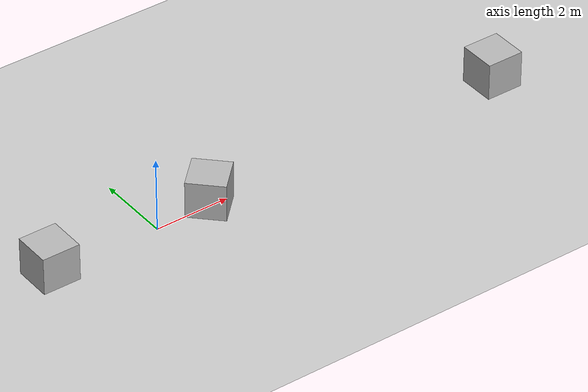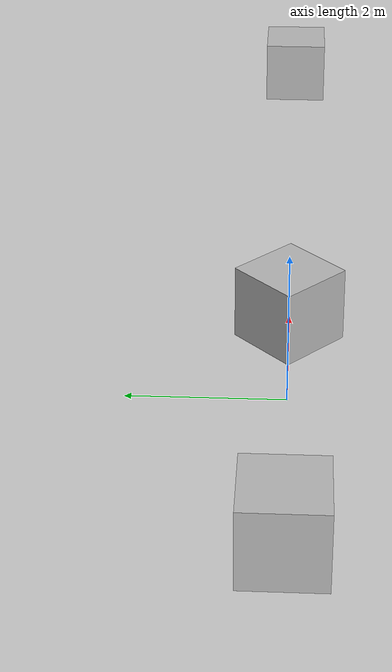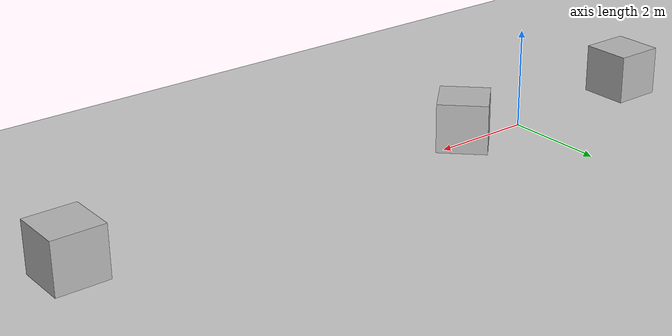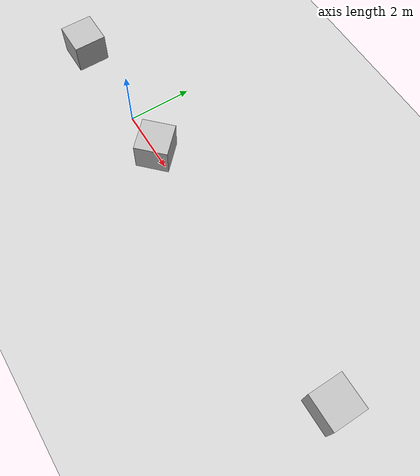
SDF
<?xml version="1.0" ?>
<sdf version="1.7">
    <world name="gazebo_ros_vision_test">
        <include>
            <!-- plane should be ignored by the detector plugins -->
            <uri>https://fuel.ignitionrobotics.org/1.0/OpenRobotics/models/Ground Plane</uri>
        </include>
        <include>
            <uri>model://sun</uri>
        </include>
        <model name="whitelisted_model">
            <pose>1.5 0 0.5 0 0 0.78525</pose>
            <static>true</static>
            <link name="link">
                <visual name="visual">
                    <geometry>
                        <box>
                            <size>1 1 1</size>
                        </box>
                    </geometry>
                </visual>
                <collision name="collision">
                    <geometry>
                        <box>
                            <size>1 1 1</size>
                        </box>
                    </geometry>
                </collision>
            </link>
        </model>
        <!-- model behind the camera, should be seen by detections, but not by logical camera-->
        <model name="whitelisted_behind">
            <pose>-3.0 0 0.5 0 0 0</pose>
            <static>true</static>
            <link name="link">
                <visual name="visual">
                    <geometry>
                        <box>
                            <size>1 1 1</size>
                        </box>
                    </geometry>
                </visual>
                <collision name="collision">
                    <geometry>
                        <box>
                            <size>1 1 1</size>
                        </box>
                    </geometry>
                </collision>
            </link>
        </model>
        <!-- model far from the camera, should not by seen by detections or camera -->
        <model name="whitelisted_far">
            <pose>10 0 0.5 0 0 0</pose>
            <static>true</static>
            <link name="link">
                <visual name="visual">
                    <geometry>
                        <box>
                            <size>1 1 1</size>
                        </box>
                    </geometry>
                </visual>
                <collision name="collision">
                    <geometry>
                        <box>
                            <size>1 1 1</size>
                        </box>
                    </geometry>
                </collision>
            </link>
        </model>
        <model name="detector">
            <pose>-2 0 1 0 0 0</pose>
            <static>true</static>
            <link name="detector">
                <sensor type="logical_camera" name="detector_camera">
                    <always_on>1</always_on>
                    <update_rate>1</update_rate>
                    <logical_camera>
                        <near>1.0</near>
                        <far>8.0</far>
                        <aspect_ratio>1.33333</aspect_ratio>
                        <horizontal_fov>0.52</horizontal_fov>
                    </logical_camera>
                    <visualize>true</visualize>
                    <plugin name="camera_detections" filename="libgazebo_ros_logical_camera.so">
                        <ros>
                            <namespace>gazebo_ros_vision</namespace>
                            <remapping>~/detections:=logical_camera/detections</remapping>
                        </ros>
                        <model_whitelist>
                            <prefix>whitelisted</prefix>
                        </model_whitelist>
                        <pose_noise>
                            <position>
                                <x>
                                    <noise type="gaussian_quantized">
                                        <stddev>0.1</stddev>
                                        <precision>0.01</precision>
                                    </noise>
                                </x>
                                <y>
                                    <noise type="gaussian_quantized">
                                        <stddev>0.1</stddev>
                                        <precision>0.01</precision>
                                    </noise>
                                </y>
                                <z>
                                    <noise type="gaussian_quantized">
                                        <stddev>0.1</stddev>
                                        <precision>0.01</precision>
                                    </noise>
                                </z>
                            </position>
                        </pose_noise>
                        <false_positive_p>0.01</false_positive_p>
                        <pose_noise_published_scale>2.0</pose_noise_published_scale>
                    </plugin>
                </sensor>
            </link>
            <!-- model plugin publishes object list relative to model -->
            <plugin name="detector_detections" filename="libgazebo_ros_detections.so">
                <ros>
                    <remapping>~/detections:=detector/detections</remapping>
                </ros>
                <!-- message header frame name should be 'detector' (same as model) -->
                <update_rate>1.0</update_rate>
                <max_distance>5.0</max_distance>
                <model_whitelist>
                    <prefix>whitelisted</prefix>
                </model_whitelist>
            </plugin>
        </model>

        <plugin name="detection_global" filename="libgazebo_ros_object_list.so">
            <ros>
                <remapping>~/detections:=world/detections</remapping>
            </ros>
            <update_rate>2.0</update_rate>
            <bounding_box_size>2.0 2.0 0.2</bounding_box_size>
            <model_whitelist>
                <prefix>whitelisted</prefix>
            </model_whitelist>
        </plugin>
    </world>
</sdf>
